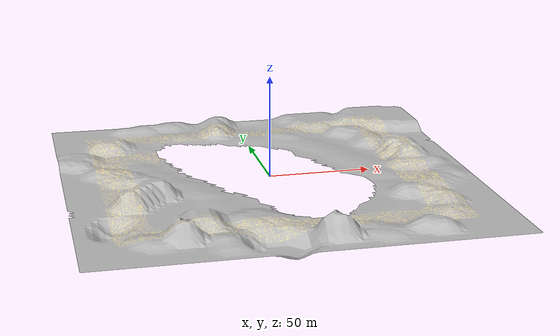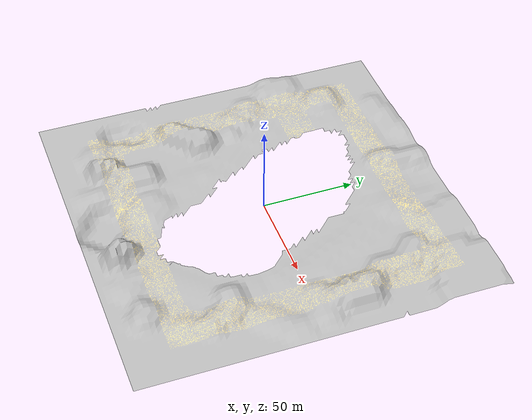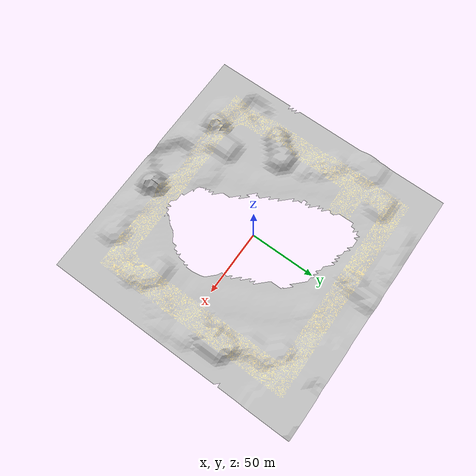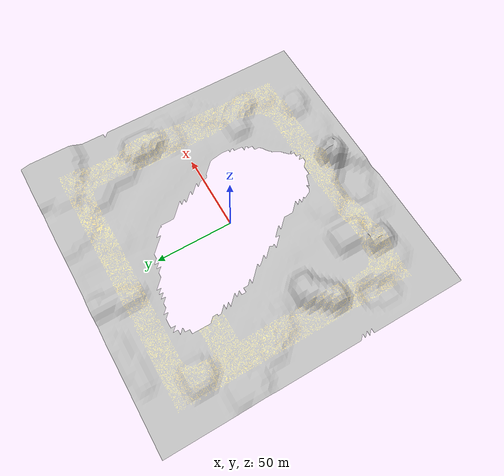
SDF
<?xml version="1.0" ?>
<sdf version="1.4">
  <model name="sanbox_terrain_road">
    <static>1</static>
    <link name="link">
      <collision name="collision">
        <geometry>
          <mesh>
            <uri>model://sanbox_terrain_road/meshes/terrain.dae</uri>
          </mesh>
        </geometry>
      </collision>
      <visual name="visual">
        <cast_shadows>false</cast_shadows>
        <geometry>
          <mesh>
            <uri>model://sanbox_terrain_road/meshes/terrain.dae</uri>
          </mesh>
        </geometry>
      </visual>
      <inertial>
       <mass>300</mass>
       <inertia>
          <ixx>150</ixx>
          <ixy>0</ixy>
          <ixz>0</ixz>
          <iyy>150</iyy>
          <iyz>0</iyz>
          <izz>150</izz>
       </inertia>
      </inertial>
    </link>
  </model>
</sdf>
